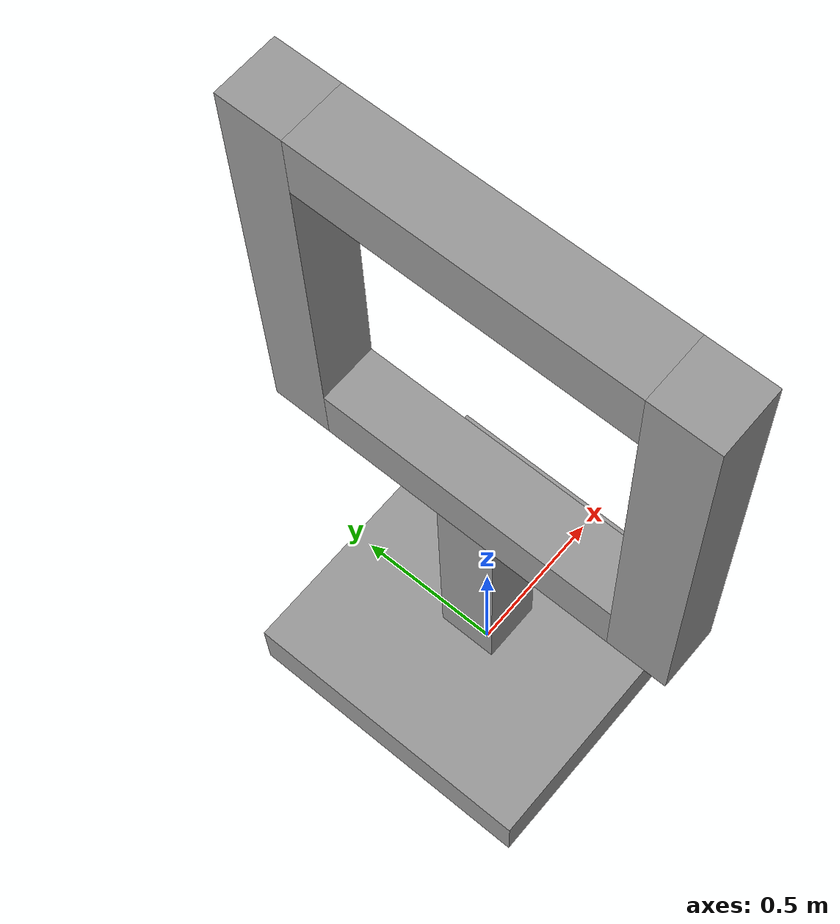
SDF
<?xml version='1.0'?>
<sdf version='1.7'>
  <model name='empobst_1'>
    <static>true</static>

    <include>
      <uri>model://marker26_8cm_massless</uri>
      <pose>0.1 -0.6 1.1 0.0 1.5707 3.141592</pose>
    </include>

    <joint name='link_1_marker_joint' type='fixed'>
      <parent>link_1</parent>
      <child>marker26_8cm_massless::link</child>
      <pose>0 0 0 0 0 0</pose>
      <physics>
        <ode>
          <limit>
            <cfm>0</cfm>
            <erp>0.2</erp>
          </limit>
          <suspension>
            <cfm>0</cfm>
            <erp>0.2</erp>
          </suspension>
        </ode>
      </physics>
    </joint>

    <link name='link_base'>
      <inertial>
        <mass>100</mass>
        <inertia>
          <ixx>0.166667</ixx>
          <ixy>0</ixy>
          <ixz>0</ixz>
          <iyy>0.166667</iyy>
          <iyz>0</iyz>
          <izz>0.166667</izz>
        </inertia>
        <pose>0 0 0 0 -0 0</pose>
      </inertial>
      <pose>0 0 0.1 0 -0 0</pose>
      <gravity>1</gravity>
      <self_collide>0</self_collide>
      <kinematic>0</kinematic>
      <enable_wind>0</enable_wind>
      <visual name='visual'>
        <pose>0 0 0 0 -0 0</pose>
        <geometry>
          <box>
            <size>1 1 0.2</size>
          </box>
        </geometry>
        <material>
          <lighting>1</lighting>
          <script>
            <uri>file://media/materials/scripts/gazebo.material</uri>
            <name>Gazebo/Grey</name>
          </script>
          <shader type='pixel'>
            <normal_map>__default__</normal_map>
          </shader>
          <ambient>0.3 0.3 0.3 1</ambient>
          <diffuse>0.7 0.7 0.7 1</diffuse>
          <specular>0.01 0.01 0.01 1</specular>
          <emissive>0 0 0 1</emissive>
        </material>
        <transparency>0</transparency>
        <cast_shadows>1</cast_shadows>
      </visual>
      <collision name='collision'>
        <laser_retro>0</laser_retro>
        <max_contacts>10</max_contacts>
        <pose>0 0 0 0 -0 0</pose>
        <geometry>
          <box>
            <size>1 1 0.2</size>
          </box>
        </geometry>
        <surface>
          <friction>
            <ode>
              <mu>1</mu>
              <mu2>1</mu2>
              <fdir1>0 0 0</fdir1>
              <slip1>0</slip1>
              <slip2>0</slip2>
            </ode>
            <torsional>
              <coefficient>1</coefficient>
              <patch_radius>0</patch_radius>
              <surface_radius>0</surface_radius>
              <use_patch_radius>1</use_patch_radius>
              <ode>
                <slip>0</slip>
              </ode>
            </torsional>
          </friction>
          <bounce>
            <restitution_coefficient>0</restitution_coefficient>
            <threshold>1e+06</threshold>
          </bounce>
          <contact>
            <collide_without_contact>0</collide_without_contact>
            <collide_without_contact_bitmask>1</collide_without_contact_bitmask>
            <collide_bitmask>1</collide_bitmask>
            <ode>
              <soft_cfm>0</soft_cfm>
              <soft_erp>0.2</soft_erp>
              <kp>1e+13</kp>
              <kd>1</kd>
              <max_vel>0.01</max_vel>
              <min_depth>0</min_depth>
            </ode>
            <bullet>
              <split_impulse>1</split_impulse>
              <split_impulse_penetration_threshold>-0.01</split_impulse_penetration_threshold>
              <soft_cfm>0</soft_cfm>
              <soft_erp>0.2</soft_erp>
              <kp>1e+13</kp>
              <kd>1</kd>
            </bullet>
          </contact>
        </surface>
      </collision>
    </link>

    <link name='link_0'>
      <pose>0 0 0.5 0 -0 0</pose>
      <visual name='visual'>
        <pose>0 0 0 0 -0 0</pose>
        <geometry>
          <box>
            <size>0.2 0.2 1</size>
          </box>
        </geometry>
        <material>
          <lighting>1</lighting>
          <script>
            <uri>file://media/materials/scripts/gazebo.material</uri>
            <name>Gazebo/Grey</name>
          </script>
          <shader type='pixel'>
            <normal_map>__default__</normal_map>
          </shader>
          <ambient>0.3 0.3 0.3 1</ambient>
          <diffuse>0.7 0.7 0.7 1</diffuse>
          <specular>0.01 0.01 0.01 1</specular>
          <emissive>0 0 0 1</emissive>
        </material>
        <transparency>0</transparency>
        <cast_shadows>1</cast_shadows>
      </visual>
      <collision name='collision'>
        <laser_retro>0</laser_retro>
        <max_contacts>10</max_contacts>
        <pose>0 0 0 0 -0 0</pose>
        <geometry>
          <box>
            <size>0.2 0.2 1</size>
          </box>
        </geometry>
        <surface>
          <friction>
            <ode>
              <mu>1</mu>
              <mu2>1</mu2>
              <fdir1>0 0 0</fdir1>
              <slip1>0</slip1>
              <slip2>0</slip2>
            </ode>
            <torsional>
              <coefficient>1</coefficient>
              <patch_radius>0</patch_radius>
              <surface_radius>0</surface_radius>
              <use_patch_radius>1</use_patch_radius>
              <ode>
                <slip>0</slip>
              </ode>
            </torsional>
          </friction>
          <bounce>
            <restitution_coefficient>0</restitution_coefficient>
            <threshold>1e+06</threshold>
          </bounce>
          <contact>
            <collide_without_contact>0</collide_without_contact>
            <collide_without_contact_bitmask>1</collide_without_contact_bitmask>
            <collide_bitmask>1</collide_bitmask>
            <ode>
              <soft_cfm>0</soft_cfm>
              <soft_erp>0.2</soft_erp>
              <kp>1e+13</kp>
              <kd>1</kd>
              <max_vel>0.01</max_vel>
              <min_depth>0</min_depth>
            </ode>
            <bullet>
              <split_impulse>1</split_impulse>
              <split_impulse_penetration_threshold>-0.01</split_impulse_penetration_threshold>
              <soft_cfm>0</soft_cfm>
              <soft_erp>0.2</soft_erp>
              <kp>1e+13</kp>
              <kd>1</kd>
            </bullet>
          </contact>
        </surface>
      </collision>
    </link>

    <link name='link_1'>
      <pose>0 0 1.1 0 -0 0</pose>
      <visual name='visual'>
        <pose>0 0 0 0 -0 0</pose>
        <geometry>
          <box>
            <size>0.2 1 0.2</size>
          </box>
        </geometry>
        <material>
          <lighting>1</lighting>
          <script>
            <uri>file://media/materials/scripts/gazebo.material</uri>
            <name>Gazebo/Grey</name>
          </script>
          <shader type='pixel'>
            <normal_map>__default__</normal_map>
          </shader>
          <ambient>0.3 0.3 0.3 1</ambient>
          <diffuse>0.7 0.7 0.7 1</diffuse>
          <specular>0.01 0.01 0.01 1</specular>
          <emissive>0 0 0 1</emissive>
        </material>
        <transparency>0</transparency>
        <cast_shadows>1</cast_shadows>
      </visual>
      <collision name='collision'>
        <laser_retro>0</laser_retro>
        <max_contacts>10</max_contacts>
        <pose>0 0 0 0 -0 0</pose>
        <geometry>
          <box>
            <size>0.2 1 0.2</size>
          </box>
        </geometry>
        <surface>
          <friction>
            <ode>
              <mu>1</mu>
              <mu2>1</mu2>
              <fdir1>0 0 0</fdir1>
              <slip1>0</slip1>
              <slip2>0</slip2>
            </ode>
            <torsional>
              <coefficient>1</coefficient>
              <patch_radius>0</patch_radius>
              <surface_radius>0</surface_radius>
              <use_patch_radius>1</use_patch_radius>
              <ode>
                <slip>0</slip>
              </ode>
            </torsional>
          </friction>
          <bounce>
            <restitution_coefficient>0</restitution_coefficient>
            <threshold>1e+06</threshold>
          </bounce>
          <contact>
            <collide_without_contact>0</collide_without_contact>
            <collide_without_contact_bitmask>1</collide_without_contact_bitmask>
            <collide_bitmask>1</collide_bitmask>
            <ode>
              <soft_cfm>0</soft_cfm>
              <soft_erp>0.2</soft_erp>
              <kp>1e+13</kp>
              <kd>1</kd>
              <max_vel>0.01</max_vel>
              <min_depth>0</min_depth>
            </ode>
            <bullet>
              <split_impulse>1</split_impulse>
              <split_impulse_penetration_threshold>-0.01</split_impulse_penetration_threshold>
              <soft_cfm>0</soft_cfm>
              <soft_erp>0.2</soft_erp>
              <kp>1e+13</kp>
              <kd>1</kd>
            </bullet>
          </contact>
        </surface>
      </collision>
    </link>

    <link name='link_2'>
      <pose>0 0 2.3 0 -0 0</pose>
      <visual name='visual'>
        <pose>0 0 0 0 -0 0</pose>
        <geometry>
          <box>
            <size>0.2 1 0.2</size>
          </box>
        </geometry>
        <material>
          <lighting>1</lighting>
          <script>
            <uri>file://media/materials/scripts/gazebo.material</uri>
            <name>Gazebo/Grey</name>
          </script>
          <shader type='pixel'>
            <normal_map>__default__</normal_map>
          </shader>
          <ambient>0.3 0.3 0.3 1</ambient>
          <diffuse>0.7 0.7 0.7 1</diffuse>
          <specular>0.01 0.01 0.01 1</specular>
          <emissive>0 0 0 1</emissive>
        </material>
        <transparency>0</transparency>
        <cast_shadows>1</cast_shadows>
      </visual>
      <collision name='collision'>
        <laser_retro>0</laser_retro>
        <max_contacts>10</max_contacts>
        <pose>0 0 0 0 -0 0</pose>
        <geometry>
          <box>
            <size>0.2 1 0.2</size>
          </box>
        </geometry>
        <surface>
          <friction>
            <ode>
              <mu>1</mu>
              <mu2>1</mu2>
              <fdir1>0 0 0</fdir1>
              <slip1>0</slip1>
              <slip2>0</slip2>
            </ode>
            <torsional>
              <coefficient>1</coefficient>
              <patch_radius>0</patch_radius>
              <surface_radius>0</surface_radius>
              <use_patch_radius>1</use_patch_radius>
              <ode>
                <slip>0</slip>
              </ode>
            </torsional>
          </friction>
          <bounce>
            <restitution_coefficient>0</restitution_coefficient>
            <threshold>1e+06</threshold>
          </bounce>
          <contact>
            <collide_without_contact>0</collide_without_contact>
            <collide_without_contact_bitmask>1</collide_without_contact_bitmask>
            <collide_bitmask>1</collide_bitmask>
            <ode>
              <soft_cfm>0</soft_cfm>
              <soft_erp>0.2</soft_erp>
              <kp>1e+13</kp>
              <kd>1</kd>
              <max_vel>0.01</max_vel>
              <min_depth>0</min_depth>
            </ode>
            <bullet>
              <split_impulse>1</split_impulse>
              <split_impulse_penetration_threshold>-0.01</split_impulse_penetration_threshold>
              <soft_cfm>0</soft_cfm>
              <soft_erp>0.2</soft_erp>
              <kp>1e+13</kp>
              <kd>1</kd>
            </bullet>
          </contact>
        </surface>
      </collision>
    </link>

    <link name='link_3'>
      <pose>0 0.6 1.7 0 -0 0</pose>
      <visual name='visual'>
        <pose>0 0 0 0 -0 0</pose>
        <geometry>
          <box>
            <size>0.2 0.2 1.4</size>
          </box>
        </geometry>
        <material>
          <lighting>1</lighting>
          <script>
            <uri>file://media/materials/scripts/gazebo.material</uri>
            <name>Gazebo/Grey</name>
          </script>
          <shader type='pixel'>
            <normal_map>__default__</normal_map>
          </shader>
          <ambient>0.3 0.3 0.3 1</ambient>
          <diffuse>0.7 0.7 0.7 1</diffuse>
          <specular>0.01 0.01 0.01 1</specular>
          <emissive>0 0 0 1</emissive>
        </material>
        <transparency>0</transparency>
        <cast_shadows>1</cast_shadows>
      </visual>
      <collision name='collision'>
        <laser_retro>0</laser_retro>
        <max_contacts>10</max_contacts>
        <pose>0 0 0 0 -0 0</pose>
        <geometry>
          <box>
            <size>0.2 0.2 1.4</size>
          </box>
        </geometry>
        <surface>
          <friction>
            <ode>
              <mu>1</mu>
              <mu2>1</mu2>
              <fdir1>0 0 0</fdir1>
              <slip1>0</slip1>
              <slip2>0</slip2>
            </ode>
            <torsional>
              <coefficient>1</coefficient>
              <patch_radius>0</patch_radius>
              <surface_radius>0</surface_radius>
              <use_patch_radius>1</use_patch_radius>
              <ode>
                <slip>0</slip>
              </ode>
            </torsional>
          </friction>
          <bounce>
            <restitution_coefficient>0</restitution_coefficient>
            <threshold>1e+06</threshold>
          </bounce>
          <contact>
            <collide_without_contact>0</collide_without_contact>
            <collide_without_contact_bitmask>1</collide_without_contact_bitmask>
            <collide_bitmask>1</collide_bitmask>
            <ode>
              <soft_cfm>0</soft_cfm>
              <soft_erp>0.2</soft_erp>
              <kp>1e+13</kp>
              <kd>1</kd>
              <max_vel>0.01</max_vel>
              <min_depth>0</min_depth>
            </ode>
            <bullet>
              <split_impulse>1</split_impulse>
              <split_impulse_penetration_threshold>-0.01</split_impulse_penetration_threshold>
              <soft_cfm>0</soft_cfm>
              <soft_erp>0.2</soft_erp>
              <kp>1e+13</kp>
              <kd>1</kd>
            </bullet>
          </contact>
        </surface>
      </collision>
    </link>

    <link name='link_4'>
      <pose>0 -0.6 1.7 0 -0 0</pose>
      <visual name='visual'>
        <pose>0 0 0 0 -0 0</pose>
        <geometry>
          <box>
            <size>0.2 0.2 1.4</size>
          </box>
        </geometry>
        <material>
          <lighting>1</lighting>
          <script>
            <uri>file://media/materials/scripts/gazebo.material</uri>
            <name>Gazebo/Grey</name>
          </script>
          <shader type='pixel'>
            <normal_map>__default__</normal_map>
          </shader>
          <ambient>0.3 0.3 0.3 1</ambient>
          <diffuse>0.7 0.7 0.7 1</diffuse>
          <specular>0.01 0.01 0.01 1</specular>
          <emissive>0 0 0 1</emissive>
        </material>
        <transparency>0</transparency>
        <cast_shadows>1</cast_shadows>
      </visual>
      <collision name='collision'>
        <laser_retro>0</laser_retro>
        <max_contacts>10</max_contacts>
        <pose>0 0 0 0 -0 0</pose>
        <geometry>
          <box>
            <size>0.2 0.2 1.4</size>
          </box>
        </geometry>
        <surface>
          <friction>
            <ode>
              <mu>1</mu>
              <mu2>1</mu2>
              <fdir1>0 0 0</fdir1>
              <slip1>0</slip1>
              <slip2>0</slip2>
            </ode>
            <torsional>
              <coefficient>1</coefficient>
              <patch_radius>0</patch_radius>
              <surface_radius>0</surface_radius>
              <use_patch_radius>1</use_patch_radius>
              <ode>
                <slip>0</slip>
              </ode>
            </torsional>
          </friction>
          <bounce>
            <restitution_coefficient>0</restitution_coefficient>
            <threshold>1e+06</threshold>
          </bounce>
          <contact>
            <collide_without_contact>0</collide_without_contact>
            <collide_without_contact_bitmask>1</collide_without_contact_bitmask>
            <collide_bitmask>1</collide_bitmask>
            <ode>
              <soft_cfm>0</soft_cfm>
              <soft_erp>0.2</soft_erp>
              <kp>1e+13</kp>
              <kd>1</kd>
              <max_vel>0.01</max_vel>
              <min_depth>0</min_depth>
            </ode>
            <bullet>
              <split_impulse>1</split_impulse>
              <split_impulse_penetration_threshold>-0.01</split_impulse_penetration_threshold>
              <soft_cfm>0</soft_cfm>
              <soft_erp>0.2</soft_erp>
              <kp>1e+13</kp>
              <kd>1</kd>
            </bullet>
          </contact>
        </surface>
      </collision>
    </link>

    <joint name='link_base_JOINT_0' type='fixed'>
      <parent>link_base</parent>
      <child>link_0</child>
      <pose>0 0 0 0 -0 0</pose>
      <physics>
        <ode>
          <limit>
            <cfm>0</cfm>
            <erp>0.2</erp>
          </limit>
          <suspension>
            <cfm>0</cfm>
            <erp>0.2</erp>
          </suspension>
        </ode>
      </physics>
    </joint>

    <joint name='link_0_JOINT_0' type='fixed'>
      <parent>link_0</parent>
      <child>link_1</child>
      <pose>0 0 0 0 -0 0</pose>
      <physics>
        <ode>
          <limit>
            <cfm>0</cfm>
            <erp>0.2</erp>
          </limit>
          <suspension>
            <cfm>0</cfm>
            <erp>0.2</erp>
          </suspension>
        </ode>
      </physics>
    </joint>

    <joint name='link_1_JOINT_1' type='fixed'>
      <parent>link_1</parent>
      <child>link_2</child>
      <pose>0 0 0 0 -0 0</pose>
      <physics>
        <ode>
          <limit>
            <cfm>0</cfm>
            <erp>0.2</erp>
          </limit>
          <suspension>
            <cfm>0</cfm>
            <erp>0.2</erp>
          </suspension>
        </ode>
      </physics>
    </joint>

    <joint name='link_1_JOINT_2' type='fixed'>
      <parent>link_1</parent>
      <child>link_3</child>
      <pose>0 0 0 0 -0 0</pose>
      <physics>
        <ode>
          <limit>
            <cfm>0</cfm>
            <erp>0.2</erp>
          </limit>
          <suspension>
            <cfm>0</cfm>
            <erp>0.2</erp>
          </suspension>
        </ode>
      </physics>
    </joint>

    <joint name='link_1_JOINT_3' type='fixed'>
      <parent>link_1</parent>
      <child>link_4</child>
      <pose>0 0 0 0 -0 0</pose>
      <physics>
        <ode>
          <limit>
            <cfm>0</cfm>
            <erp>0.2</erp>
          </limit>
          <suspension>
            <cfm>0</cfm>
            <erp>0.2</erp>
          </suspension>
        </ode>
      </physics>
    </joint>

    <allow_auto_disable>1</allow_auto_disable>
  </model>
</sdf>

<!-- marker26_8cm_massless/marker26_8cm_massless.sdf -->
<sdf version="1.4">
  <model name="marker26_8cm">
    <static>true</static>
    <link name="marker">
      <visual name="visual">
        <geometry>
          <box>
            <size>0.2 0.2 0.001</size>
            <!-- SIZE OF THE MARKER + MARGIN -->
          </box>
        </geometry>
        <material>
          <script>
	          <uri>model://marker26_8cm_massless/material/scripts</uri>
	          <uri>model://marker26_8cm_massless/material/textures</uri>
            <name>Aruco/marker26_8cm</name>
          </script>
        </material>
      </visual>
      <collision name="collision">
        <geometry>
          <box>
            <size>0.2 0.2 0.02</size>
            <!-- SIZE OF THE MARKER + MARGIN -->
          </box>
        </geometry>
      </collision>
    </link>
  </model>
</sdf>
